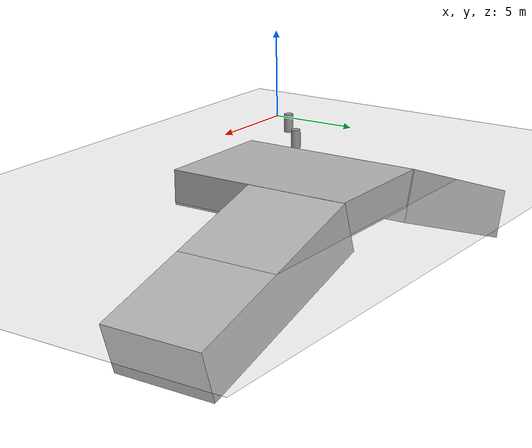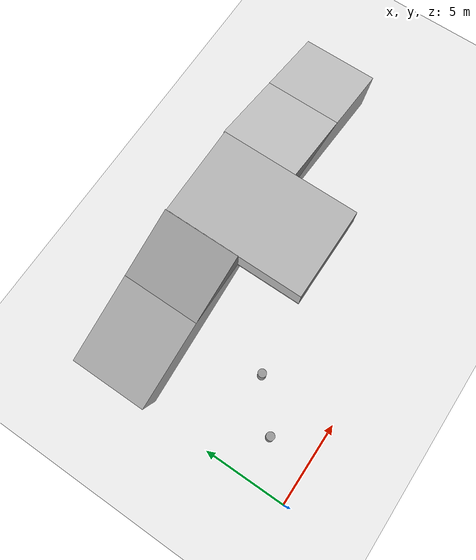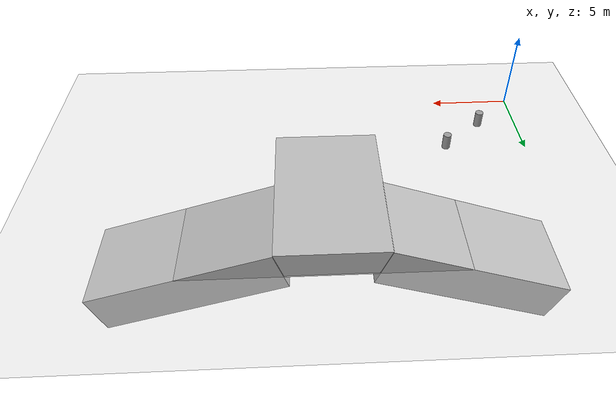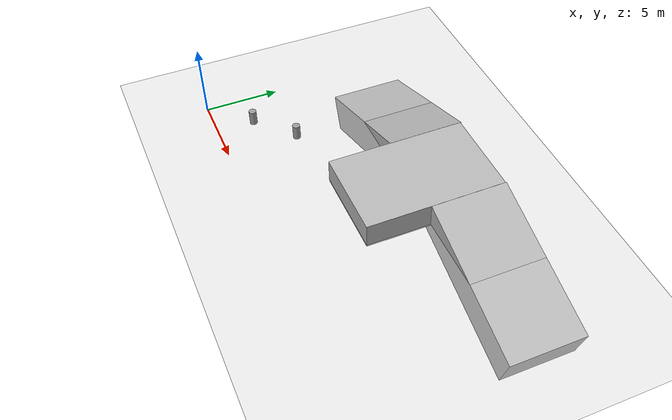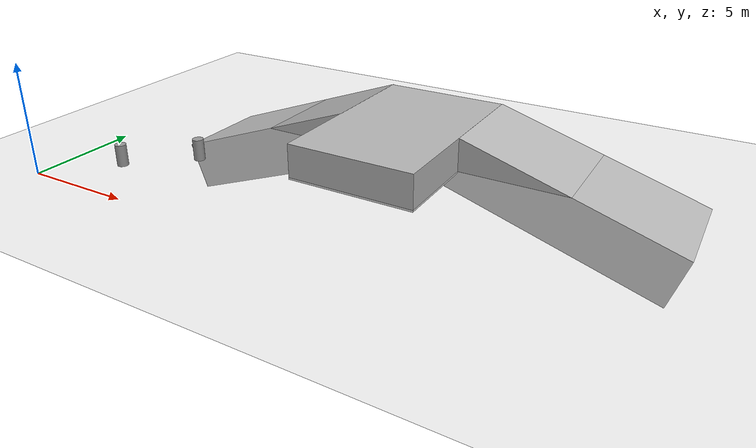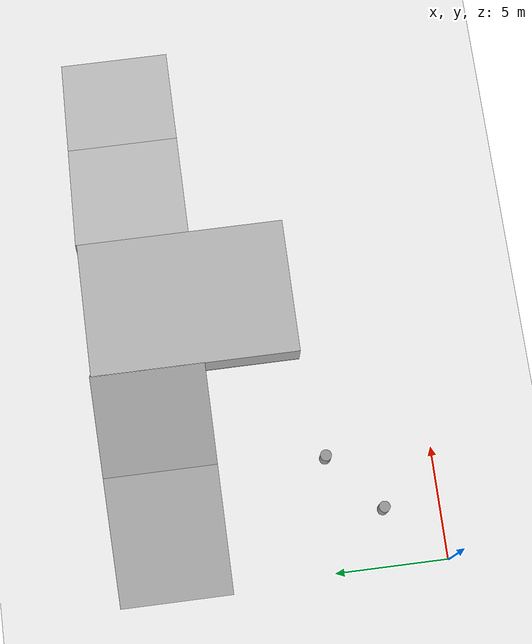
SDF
<sdf version="1.7">
 <world name="default">
  <light name="sun" type="directional">
   <pose>0 0 10 0 -0 0</pose>
   <diffuse>0.8 0.8 0.8 1</diffuse>
   <specular>0.2 0.2 0.2 1</specular>
   <attenuation>
    <range>1000</range>
    <constant>0.9</constant>
    <linear>0.01</linear>
    <quadratic>0.001</quadratic>
   </attenuation>
   <direction>-0.5 0.1 -0.9</direction>
   <spot><inner_angle>0</inner_angle><outer_angle>0</outer_angle><falloff>0</falloff></spot>
  </light>
  <model name="ground_plane">
   <static>1</static>
   <link name="link">
    <collision name="collision">
     <geometry><plane><normal>0 0 1</normal><size>100 100</size></plane></geometry>
     <surface><friction><ode><mu>100</mu><mu2>50</mu2></ode></friction></surface>
    </collision>
    <visual name="visual">
     <cast_shadows>0</cast_shadows>
     <geometry><plane><normal>0 0 1</normal><size>100 100</size></plane></geometry>
     <material>
      <script><uri>file://media/materials/scripts/gazebo.material</uri><name>Gazebo/Grey</name></script>
     </material>
    </visual>
   </link>
  </model>
  <gravity>0 0 -9.8</gravity>
  <magnetic_field>6e-06 2.3e-05 -4.2e-05</magnetic_field>
  <atmosphere type="adiabatic"/>
  <physics type="ode">
   <max_step_size>0.001</max_step_size>
   <real_time_factor>1</real_time_factor>
   <real_time_update_rate>1000</real_time_update_rate>
  </physics>
  <scene><ambient>0.4 0.4 0.4 1</ambient><background>0.7 0.7 0.7 1</background><shadows>1</shadows></scene>
  <audio><device>default</device></audio>
  <spherical_coordinates>
   <surface_model>EARTH_WGS84</surface_model>
   <latitude_deg>0</latitude_deg>
   <longitude_deg>0</longitude_deg>
   <elevation>0</elevation>
   <heading_deg>0</heading_deg>
  </spherical_coordinates>
  <light name="user_directional_light_0" type="directional">
   <pose>-8.52272 -51.5555 1 0 -0 0</pose>
   <diffuse>0.5 0.5 0.5 1</diffuse>
   <specular>0.1 0.1 0.1 1</specular>
   <direction>0.1 0.1 -0.9</direction>
   <attenuation>
    <range>20</range>
    <constant>0.5</constant>
    <linear>0.01</linear>
    <quadratic>0.001</quadratic>
   </attenuation>
  </light>
  <light name="user_directional_light_1" type="directional">
   <pose>-8.60277 -51.6095 1 0 -0 0</pose>
   <diffuse>0.5 0.5 0.5 1</diffuse>
   <specular>0.1 0.1 0.1 1</specular>
   <direction>0.1 0.1 -0.9</direction>
   <attenuation>
    <range>20</range>
    <constant>0.5</constant>
    <linear>0.01</linear>
    <quadratic>0.001</quadratic>
   </attenuation>
  </light>
  <light name="user_directional_light_2" type="directional">
   <pose>-8.75536 -51.6172 1 0 -0 0</pose>
   <diffuse>0.5 0.5 0.5 1</diffuse>
   <specular>0.1 0.1 0.1 1</specular>
   <direction>0.1 0.1 -0.9</direction>
   <attenuation>
    <range>20</range>
    <constant>0.5</constant>
    <linear>0.01</linear>
    <quadratic>0.001</quadratic>
   </attenuation>
  </light>
  <light name="user_directional_light_3" type="directional">
   <pose>-8.61835 -51.6416 1 0 -0 0</pose>
   <diffuse>0.5 0.5 0.5 1</diffuse>
   <specular>0.1 0.1 0.1 1</specular>
   <direction>0.1 0.1 -0.9</direction>
   <attenuation>
    <range>20</range>
    <constant>0.5</constant>
    <linear>0.01</linear>
    <quadratic>0.001</quadratic>
   </attenuation>
  </light>
  <light name="user_directional_light_4" type="directional">
   <pose>-8.61835 -51.6416 1 0 -0 0</pose>
   <diffuse>0.5 0.5 0.5 1</diffuse>
   <specular>0.1 0.1 0.1 1</specular>
   <direction>0.1 0.1 -0.9</direction>
   <attenuation>
    <range>20</range>
    <constant>0.5</constant>
    <linear>0.01</linear>
    <quadratic>0.001</quadratic>
   </attenuation>
  </light>
  <model name="slope_ros2_papaer1">
   <link name="slope_down">
    <pose>5.80469 0.081427 -1.20923 0 0.299885 0</pose>
    <inertial>
     <inertia><ixx>0</ixx><ixy>0</ixy><ixz>0</ixz><iyy>0</iyy><iyz>0</iyz><izz>0</izz></inertia>
     <mass>0</mass>
    </inertial>
    <visual name="visual">
     <geometry><box><size>10.6012 5.12132 2.52711</size></box></geometry>
     <material><shader type="pixel"/></material>
    </visual>
    <collision name="collision">
     <geometry><box><size>10.6012 5.12132 2.52711</size></box></geometry>
     <surface>
      <friction>
       <ode><mu>1</mu><mu2>1</mu2><fdir1>0 0 0</fdir1><slip1>0</slip1><slip2>0</slip2></ode>
       <torsional>
        <coefficient>1</coefficient>
        <patch_radius>0</patch_radius>
        <surface_radius>0</surface_radius>
        <use_patch_radius>1</use_patch_radius>
        <ode><slip>0</slip></ode>
       </torsional>
      </friction>
      <bounce><restitution_coefficient>0</restitution_coefficient><threshold>1e+06</threshold></bounce>
      <contact>
       <collide_without_contact>0</collide_without_contact>
       <collide_without_contact_bitmask>1</collide_without_contact_bitmask>
       <collide_bitmask>1</collide_bitmask>
       <ode>
        <soft_cfm>0</soft_cfm>
        <soft_erp>0.2</soft_erp>
        <kp>1e+13</kp>
        <kd>1</kd>
        <max_vel>0.01</max_vel>
        <min_depth>0</min_depth>
       </ode>
       <bullet>
        <split_impulse>1</split_impulse>
        <split_impulse_penetration_threshold>-0.01</split_impulse_penetration_threshold>
        <soft_cfm>0</soft_cfm>
        <soft_erp>0.2</soft_erp>
        <kp>1e+13</kp>
        <kd>1</kd>
       </bullet>
      </contact>
     </surface>
    </collision>
   </link>
   <link name="slope_down_clone">
    <pose>-9.48985 0.080381 -1.45866 0 -0.355634 0</pose>
    <inertial>
     <inertia><ixx>0</ixx><ixy>0</ixy><ixz>0</ixz><iyy>0</iyy><iyz>0</iyz><izz>0</izz></inertia>
     <mass>0</mass>
    </inertial>
    <visual name="visual">
     <geometry><box><size>10.6012 5.12132 2.52711</size></box></geometry>
     <material><shader type="pixel"><normal_map>__default__</normal_map></shader></material>
    </visual>
    <collision name="collision">
     <geometry><box><size>10.6012 5.12132 2.52711</size></box></geometry>
     <surface>
      <friction>
       <ode><mu>1</mu><mu2>1</mu2><fdir1>0 0 0</fdir1><slip1>0</slip1><slip2>0</slip2></ode>
       <torsional>
        <coefficient>1</coefficient>
        <patch_radius>0</patch_radius>
        <surface_radius>0</surface_radius>
        <use_patch_radius>1</use_patch_radius>
        <ode><slip>0</slip></ode>
       </torsional>
      </friction>
      <bounce><restitution_coefficient>0</restitution_coefficient><threshold>1e+06</threshold></bounce>
      <contact>
       <collide_without_contact>0</collide_without_contact>
       <collide_without_contact_bitmask>1</collide_without_contact_bitmask>
       <collide_bitmask>1</collide_bitmask>
       <ode>
        <soft_cfm>0</soft_cfm>
        <soft_erp>0.2</soft_erp>
        <kp>1e+13</kp>
        <kd>1</kd>
        <max_vel>0.01</max_vel>
        <min_depth>0</min_depth>
       </ode>
       <bullet>
        <split_impulse>1</split_impulse>
        <split_impulse_penetration_threshold>-0.01</split_impulse_penetration_threshold>
        <soft_cfm>0</soft_cfm>
        <soft_erp>0.2</soft_erp>
        <kp>1e+13</kp>
        <kd>1</kd>
       </bullet>
      </contact>
     </surface>
    </collision>
   </link>
   <link name="slope_zero">
    <pose>-1.92902 -2.0749 0.7221 0 -0 0</pose>
    <inertial>
     <inertia><ixx>0</ixx><ixy>0</ixy><ixz>0</ixz><iyy>0</iyy><iyz>0</iyz><izz>0</izz></inertia>
     <mass>0</mass>
    </inertial>
    <visual name="visual">
     <geometry><box><size>6.10024 9.32027 1.69097</size></box></geometry>
     <material><shader type="pixel"><normal_map>__default__</normal_map></shader></material>
    </visual>
    <collision name="collision">
     <geometry><box><size>6.10024 9.32027 1.69097</size></box></geometry>
     <surface>
      <friction>
       <ode><mu>1</mu><mu2>1</mu2><fdir1>0 0 0</fdir1><slip1>0</slip1><slip2>0</slip2></ode>
       <torsional>
        <coefficient>1</coefficient>
        <patch_radius>0</patch_radius>
        <surface_radius>0</surface_radius>
        <use_patch_radius>1</use_patch_radius>
        <ode><slip>0</slip></ode>
       </torsional>
      </friction>
      <bounce><restitution_coefficient>0</restitution_coefficient><threshold>1e+06</threshold></bounce>
      <contact>
       <collide_without_contact>0</collide_without_contact>
       <collide_without_contact_bitmask>1</collide_without_contact_bitmask>
       <collide_bitmask>1</collide_bitmask>
       <ode>
        <soft_cfm>0</soft_cfm>
        <soft_erp>0.2</soft_erp>
        <kp>1e+13</kp>
        <kd>1</kd>
        <max_vel>0.01</max_vel>
        <min_depth>0</min_depth>
       </ode>
       <bullet>
        <split_impulse>1</split_impulse>
        <split_impulse_penetration_threshold>-0.01</split_impulse_penetration_threshold>
        <soft_cfm>0</soft_cfm>
        <soft_erp>0.2</soft_erp>
        <kp>1e+13</kp>
        <kd>1</kd>
       </bullet>
      </contact>
     </surface>
    </collision>
   </link>
   <static>1</static>
   <pose>14.7273 11.9726 0 0 -0 0</pose>
  </model>
  <light name="user_directional_light_5" type="directional">
   <pose>-4.63133 -5.37372 1 0 -0 0</pose>
   <diffuse>0.5 0.5 0.5 1</diffuse>
   <specular>0.1 0.1 0.1 1</specular>
   <direction>0.1 0.1 -0.9</direction>
   <attenuation>
    <range>20</range>
    <constant>0.5</constant>
    <linear>0.01</linear>
    <quadratic>0.001</quadratic>
   </attenuation>
  </light>
  <light name="user_directional_light_6" type="directional">
   <pose>-4.54039 -5.32841 1 0 -0 0</pose>
   <diffuse>0.5 0.5 0.5 1</diffuse>
   <specular>0.1 0.1 0.1 1</specular>
   <direction>0.1 0.1 -0.9</direction>
   <attenuation>
    <range>20</range>
    <constant>0.5</constant>
    <linear>0.01</linear>
    <quadratic>0.001</quadratic>
   </attenuation>
  </light>
  <model name="unit_cylinder">
   <pose>2.5215 2.52673 0.5 0 -0 0</pose>
   <link name="link">
    <inertial>
     <mass>1</mass>
     <inertia><ixx>0.145833</ixx><ixy>0</ixy><ixz>0</ixz><iyy>0.145833</iyy><iyz>0</iyz><izz>0.125</izz></inertia>
    </inertial>
    <collision name="collision">
     <geometry><cylinder><radius>0.250253</radius><length>1</length></cylinder></geometry>
    </collision>
    <visual name="visual">
     <geometry><cylinder><radius>0.250253</radius><length>1</length></cylinder></geometry>
     <material>
      <script><name>Gazebo/Grey</name><uri>file://media/materials/scripts/gazebo.material</uri></script>
     </material>
    </visual>
   </link>
  </model>
  <model name="unit_cylinder_clone">
   <pose>5.07602 4.73643 0.5 0 -0 0</pose>
   <link name="link">
    <inertial>
     <mass>1</mass>
     <inertia><ixx>0.145833</ixx><ixy>0</ixy><ixz>0</ixz><iyy>0.145833</iyy><iyz>0</iyz><izz>0.125</izz></inertia>
    </inertial>
    <collision name="collision">
     <geometry><cylinder><radius>0.250253</radius><length>1</length></cylinder></geometry>
    </collision>
    <visual name="visual">
     <geometry><cylinder><radius>0.250253</radius><length>1</length></cylinder></geometry>
     <material>
      <script><name>Gazebo/Grey</name><uri>file://media/materials/scripts/gazebo.material</uri></script>
     </material>
    </visual>
   </link>
  </model>
 </world>
</sdf>
